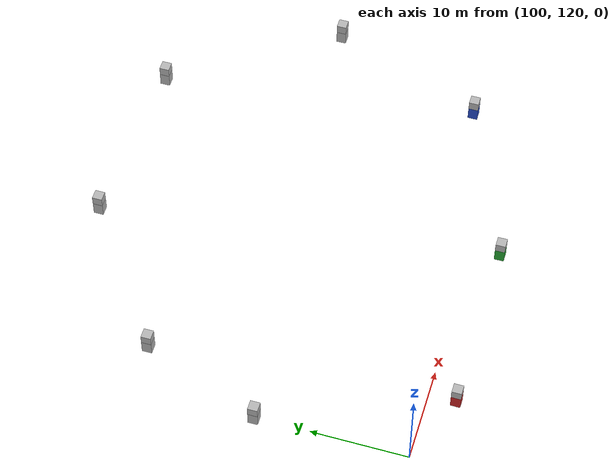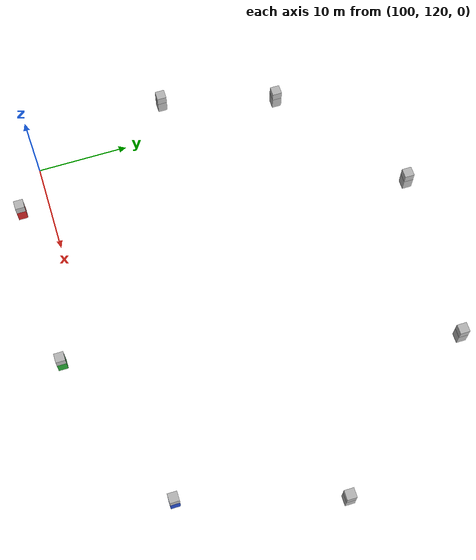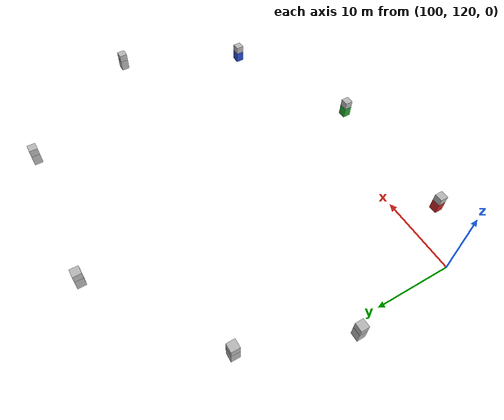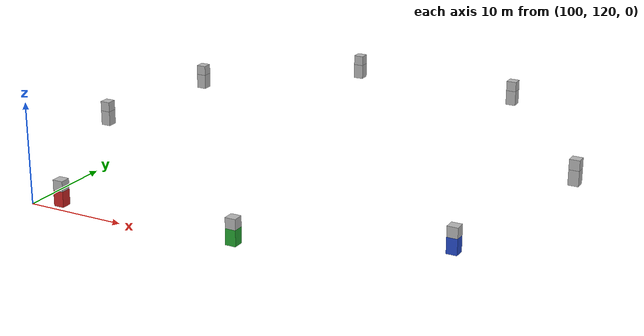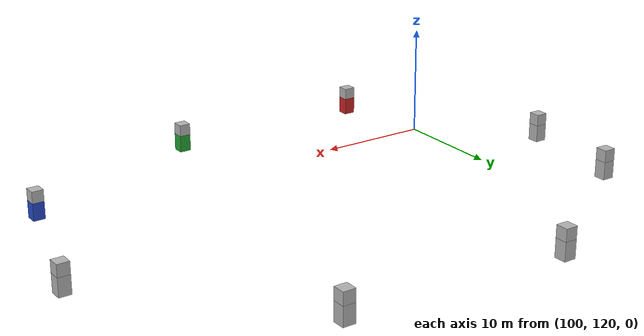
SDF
<sdf version="1.7">
 <world name="default">
  <light name="sun" type="directional">
   <pose>0 0 10 0 -0 0</pose>
   <diffuse>0.8 0.8 0.8 1</diffuse>
   <specular>0.2 0.2 0.2 1</specular>
   <attenuation>
    <range>1000</range>
    <constant>0.9</constant>
    <linear>0.01</linear>
    <quadratic>0.001</quadratic>
   </attenuation>
   <direction>-0.5 0.1 -0.9</direction>
   <spot><inner_angle>0</inner_angle><outer_angle>0</outer_angle><falloff>0</falloff></spot>
  </light>
  <model name="landmark_00">
   <static>true</static>
   <link name="body_link">
    <visual name="body_visual">
     <geometry><box><size>1 1 1.5</size></box></geometry>
     <material>
      <script><uri>file://media/materials/scripts/gazebo.material</uri><name>Gazebo/Red</name></script>
     </material>
    </visual>
   </link>
   <link name="aruco_marker_link">
    <visual name="body_visual">
     <geometry><box><size>1 1 1</size></box></geometry>
     <material>
      <script>
       <uri>file://src/models/aruco_markers/materials/scripts</uri>
       <uri>file://src/models/aruco_markers/textures/aruco_marker_00.png</uri>
       <name>aruco_marker_00</name>
      </script>
     </material>
     <pose>0 0 1.25 0 0 0</pose>
    </visual>
   </link>
   <pose>106 117 2.9 0 0 -1.57</pose>
  </model>
  <model name="landmark_01">
   <static>true</static>
   <link name="body_link">
    <visual name="body_visual">
     <geometry><box><size>1 1 1.5</size></box></geometry>
     <material>
      <script><uri>file://media/materials/scripts/gazebo.material</uri><name>Gazebo/Green</name></script>
     </material>
    </visual>
   </link>
   <link name="aruco_marker_link">
    <visual name="body_visual">
     <geometry><box><size>1 1 1</size></box></geometry>
     <material>
      <script>
       <uri>file://src/models/aruco_markers/materials/scripts</uri>
       <uri>file://src/models/aruco_markers/textures/aruco_marker_01.png</uri>
       <name>aruco_marker_01</name>
      </script>
     </material>
     <pose>0 0 1.25 0 0 0</pose>
    </visual>
   </link>
   <pose>124 117 2.9 0 0 -1.57</pose>
  </model>
  <model name="landmark_02">
   <static>true</static>
   <link name="body_link">
    <visual name="body_visual">
     <geometry><box><size>1 1 1.5</size></box></geometry>
     <material>
      <script><uri>file://media/materials/scripts/gazebo.material</uri><name>Gazebo/Blue</name></script>
     </material>
    </visual>
   </link>
   <link name="aruco_marker_link">
    <visual name="body_visual">
     <geometry><box><size>1 1 1</size></box></geometry>
     <material>
      <script>
       <uri>file://src/models/aruco_markers/materials/scripts</uri>
       <uri>file://src/models/aruco_markers/textures/aruco_marker_02.png</uri>
       <name>aruco_marker_02</name>
      </script>
     </material>
     <pose>0 0 1.25 0 0 0</pose>
    </visual>
   </link>
   <pose>141 124 3 0 0 -1.57</pose>
  </model>
  <model name="landmark_03">
   <static>true</static>
   <link name="body_link">
    <visual name="body_visual"><geometry><box><size>1 1 1.5</size></box></geometry></visual>
   </link>
   <link name="aruco_marker_link">
    <visual name="body_visual">
     <geometry><box><size>1 1 1</size></box></geometry>
     <material>
      <script>
       <uri>file://src/models/aruco_markers/materials/scripts</uri>
       <uri>file://src/models/aruco_markers/textures/aruco_marker_03.png</uri>
       <name>aruco_marker_03</name>
      </script>
     </material>
     <pose>0 0 1.25 0 0 0</pose>
    </visual>
   </link>
   <pose>146 140 4.5 0 0 -1.57</pose>
  </model>
  <model name="landmark_04">
   <static>true</static>
   <link name="body_link">
    <visual name="body_visual"><geometry><box><size>1 1 1.5</size></box></geometry></visual>
   </link>
   <link name="aruco_marker_link">
    <visual name="body_visual">
     <geometry><box><size>1 1 1</size></box></geometry>
     <material>
      <script>
       <uri>file://src/models/aruco_markers/materials/scripts</uri>
       <uri>file://src/models/aruco_markers/textures/aruco_marker_04.png</uri>
       <name>aruco_marker_04</name>
      </script>
     </material>
     <pose>0 0 1.25 0 0 0</pose>
    </visual>
   </link>
   <pose>134 156 5.7 0 0 -1.57</pose>
  </model>
  <model name="landmark_05">
   <static>true</static>
   <link name="body_link">
    <visual name="body_visual"><geometry><box><size>1 1 1.5</size></box></geometry></visual>
   </link>
   <link name="aruco_marker_link">
    <visual name="body_visual">
     <geometry><box><size>1 1 1</size></box></geometry>
     <material>
      <script>
       <uri>file://src/models/aruco_markers/materials/scripts</uri>
       <uri>file://src/models/aruco_markers/textures/aruco_marker_05.png</uri>
       <name>aruco_marker_05</name>
      </script>
     </material>
     <pose>0 0 1.25 0 0 0</pose>
    </visual>
   </link>
   <pose>116 157 5.7 0 0 -1.57</pose>
  </model>
  <model name="landmark_06">
   <static>true</static>
   <link name="body_link">
    <visual name="body_visual"><geometry><box><size>1 1 1.5</size></box></geometry></visual>
   </link>
   <link name="aruco_marker_link">
    <visual name="body_visual">
     <geometry><box><size>1 1 1</size></box></geometry>
     <material>
      <script>
       <uri>file://src/models/aruco_markers/materials/scripts</uri>
       <uri>file://src/models/aruco_markers/textures/aruco_marker_06.png</uri>
       <name>aruco_marker_06</name>
      </script>
     </material>
     <pose>0 0 1.25 0 0 0</pose>
    </visual>
   </link>
   <pose>102 147 5.2 0 0 -1.57</pose>
  </model>
  <model name="landmark_07">
   <static>true</static>
   <link name="body_link">
    <visual name="body_visual"><geometry><box><size>1 1 1.5</size></box></geometry></visual>
   </link>
   <link name="aruco_marker_link">
    <visual name="body_visual">
     <geometry><box><size>1 1 1</size></box></geometry>
     <material>
      <script>
       <uri>file://src/models/aruco_markers/materials/scripts</uri>
       <uri>file://src/models/aruco_markers/textures/aruco_marker_07.png</uri>
       <name>aruco_marker_07</name>
      </script>
     </material>
     <pose>0 0 1.25 0 0 0</pose>
    </visual>
   </link>
   <pose>98 135 3.9 0 0 -1.57</pose>
  </model>
  <gravity>0 0 -9.8</gravity>
  <magnetic_field>0 
            -2.3e-05
            0</magnetic_field>
  <atmosphere type="adiabatic"/>
  <physics type="ode">
   <max_step_size>0.001</max_step_size>
   <real_time_factor>1.0</real_time_factor>
   <real_time_update_rate>1000</real_time_update_rate>
   <physics_update_rate>1000</physics_update_rate>
  </physics>
  <scene><ambient>0.4 0.4 0.4 1</ambient><background>0.7 0.7 0.7 1</background><shadows>1</shadows></scene>
  <spherical_coordinates>
   <surface_model>EARTH_WGS84</surface_model>
   <latitude_deg>44.98</latitude_deg>
   <longitude_deg>-93.27</longitude_deg>
   <elevation>256</elevation>
   <heading_deg>0</heading_deg>
  </spherical_coordinates>
  <plugin name="gazebo_ros_state" filename="libgazebo_ros_state.so">
   <ros><namespace>/gazebo</namespace></ros>
   <update_rate>100.0</update_rate>
  </plugin>
 </world>
</sdf>
